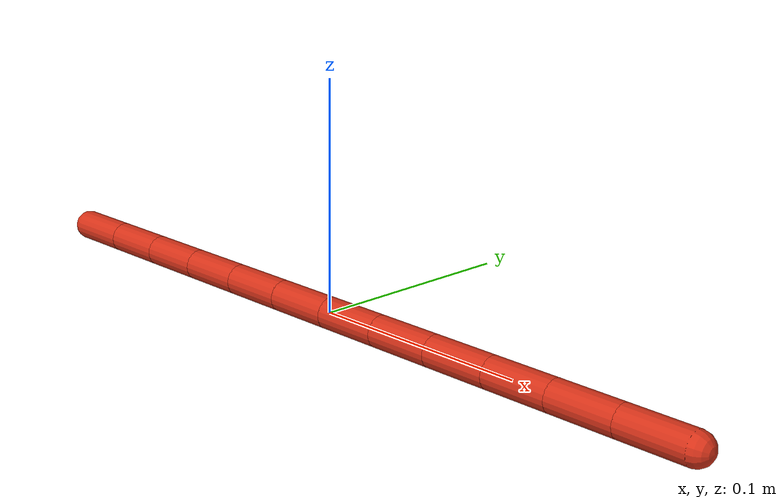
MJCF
<mujoco model="cable_12">
  <asset>
    <material name="cable_mat" rgba="0.85 0.2 0.1 1"/>
  </asset>

  <worldbody>
    <body>
      <body name="object">
        <body name="cable_root" pos="0 0 0">
          <geom
            name="cable_seg_00"
            type="capsule"
            fromto="-0.180 0 0 -0.150 0 0"
            size="0.007"
            density="550"
            friction="1.1 0.02 0.001"
            material="cable_mat"
            group="1"
          />
          <site name="cable_site_00" pos="-0.180 0 0" size="0.004" rgba="1 0 0 1"/>
          <site name="cable_site_01" pos="-0.150 0 0" size="0.003" rgba="1 0.35 0.2 1"/>

          <body name="cable_body_01" pos="-0.150 0 0">
            <joint name="cable_joint_01" type="ball" damping="0.25"/>
            <geom name="cable_seg_01" type="capsule" fromto="0 0 0 0.030 0 0" size="0.007" density="550" friction="1.1 0.02 0.001" material="cable_mat" group="1"/>
            <site name="cable_site_02" pos="0.030 0 0" size="0.003" rgba="1 0.35 0.2 1"/>

            <body name="cable_body_02" pos="0.030 0 0">
              <joint name="cable_joint_02" type="ball" damping="0.25"/>
              <geom name="cable_seg_02" type="capsule" fromto="0 0 0 0.030 0 0" size="0.007" density="550" friction="1.1 0.02 0.001" material="cable_mat" group="1"/>
              <site name="cable_site_03" pos="0.030 0 0" size="0.003" rgba="1 0.35 0.2 1"/>

              <body name="cable_body_03" pos="0.030 0 0">
                <joint name="cable_joint_03" type="ball" damping="0.25"/>
                <geom name="cable_seg_03" type="capsule" fromto="0 0 0 0.030 0 0" size="0.007" density="550" friction="1.1 0.02 0.001" material="cable_mat" group="1"/>
                <site name="cable_site_04" pos="0.030 0 0" size="0.003" rgba="1 0.35 0.2 1"/>

                <body name="cable_body_04" pos="0.030 0 0">
                  <joint name="cable_joint_04" type="ball" damping="0.25"/>
                  <geom name="cable_seg_04" type="capsule" fromto="0 0 0 0.030 0 0" size="0.007" density="550" friction="1.1 0.02 0.001" material="cable_mat" group="1"/>
                  <site name="cable_site_05" pos="0.030 0 0" size="0.003" rgba="1 0.35 0.2 1"/>

                  <body name="cable_body_05" pos="0.030 0 0">
                    <joint name="cable_joint_05" type="ball" damping="0.25"/>
                    <geom name="cable_seg_05" type="capsule" fromto="0 0 0 0.030 0 0" size="0.007" density="550" friction="1.1 0.02 0.001" material="cable_mat" group="1"/>
                    <site name="cable_site_06" pos="0.030 0 0" size="0.003" rgba="1 0.35 0.2 1"/>

                    <body name="cable_body_06" pos="0.030 0 0">
                      <joint name="cable_joint_06" type="ball" damping="0.25"/>
                      <geom name="cable_seg_06" type="capsule" fromto="0 0 0 0.030 0 0" size="0.007" density="550" friction="1.1 0.02 0.001" material="cable_mat" group="1"/>
                      <site name="cable_site_07" pos="0.030 0 0" size="0.003" rgba="1 0.35 0.2 1"/>

                      <body name="cable_body_07" pos="0.030 0 0">
                        <joint name="cable_joint_07" type="ball" damping="0.25"/>
                        <geom name="cable_seg_07" type="capsule" fromto="0 0 0 0.030 0 0" size="0.007" density="550" friction="1.1 0.02 0.001" material="cable_mat" group="1"/>
                        <site name="cable_site_08" pos="0.030 0 0" size="0.003" rgba="1 0.35 0.2 1"/>

                        <body name="cable_body_08" pos="0.030 0 0">
                          <joint name="cable_joint_08" type="ball" damping="0.25"/>
                          <geom name="cable_seg_08" type="capsule" fromto="0 0 0 0.030 0 0" size="0.007" density="550" friction="1.1 0.02 0.001" material="cable_mat" group="1"/>
                          <site name="cable_site_09" pos="0.030 0 0" size="0.003" rgba="1 0.35 0.2 1"/>

                          <body name="cable_body_09" pos="0.030 0 0">
                            <joint name="cable_joint_09" type="ball" damping="0.25"/>
                            <geom name="cable_seg_09" type="capsule" fromto="0 0 0 0.030 0 0" size="0.007" density="550" friction="1.1 0.02 0.001" material="cable_mat" group="1"/>
                            <site name="cable_site_10" pos="0.030 0 0" size="0.003" rgba="1 0.35 0.2 1"/>

                            <body name="cable_body_10" pos="0.030 0 0">
                              <joint name="cable_joint_10" type="ball" damping="0.25"/>
                              <geom name="cable_seg_10" type="capsule" fromto="0 0 0 0.030 0 0" size="0.007" density="550" friction="1.1 0.02 0.001" material="cable_mat" group="1"/>
                              <site name="cable_site_11" pos="0.030 0 0" size="0.003" rgba="1 0.35 0.2 1"/>

                              <body name="cable_body_11" pos="0.030 0 0">
                                <joint name="cable_joint_11" type="ball" damping="0.25"/>
                                <geom name="cable_seg_11" type="capsule" fromto="0 0 0 0.030 0 0" size="0.007" density="550" friction="1.1 0.02 0.001" material="cable_mat" group="1"/>
                                <site name="cable_site_12" pos="0.030 0 0" size="0.004" rgba="1 0 0 1"/>
                              </body>
                            </body>
                          </body>
                        </body>
                      </body>
                    </body>
                  </body>
                </body>
              </body>
            </body>
          </body>
        </body>
      </body>
      <site name="bottom_site" pos="0 0 -0.007" size="0.005" rgba="0 0 0 0"/>
      <site name="top_site" pos="0 0 0.007" size="0.005" rgba="0 0 0 0"/>
      <site name="horizontal_radius_site" pos="0.180 0 0" size="0.005" rgba="0 0 0 0"/>
    </body>
  </worldbody>
</mujoco>
